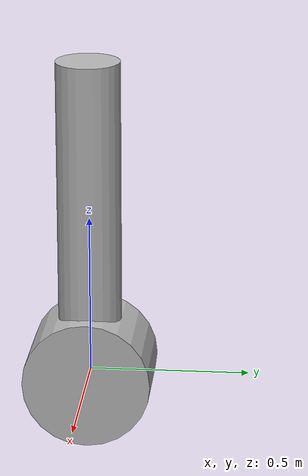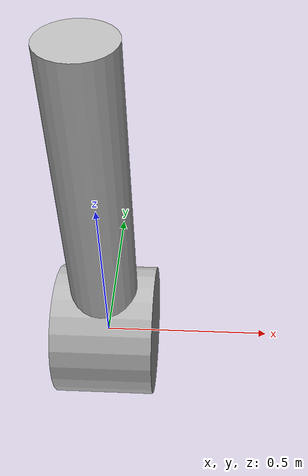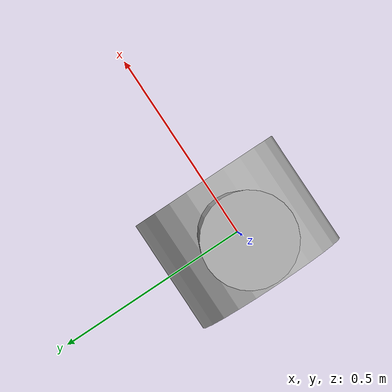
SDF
<?xml version='1.0' ?>

<!-- THIS FILE IS GENERATED FROM segway_cart_pole.rsdf -->

<sdf version='1.6'>
  <model name='CartPole'>
    <!-- This sdf file produces a model with the default parameters as
         documented in cart_pole_params.named_vector.
         They MUST be kept in sync. -->
    <link name='wheel_cart'>
      <pose>0 0 0 0 0 0</pose>
      <inertial>
        <mass>10.0</mass>
        <inertia>
          <ixx>1.0e-20</ixx><iyy>1.0e-20</iyy><izz>1.0e-20</izz>
          <ixy>0</ixy><ixz>0</ixz><iyz>0</iyz>
        </inertia>
      </inertial>

      <visual name='vis_wheel_joint'>
        <pose>0 0 0 0 1.570795 0</pose>
        <geometry>
          <cylinder>
            <radius>0.2</radius>
            <length>0.3</length>
          </cylinder>
        </geometry>
      </visual>

      <collision name='col_wheel_joint'>
        <pose>0 0 0 0 1.570795 0</pose>
        <geometry>
          <cylinder>
            <radius>0.2</radius>
            <length>0.3</length>
          </cylinder>
        </geometry>
      </collision>

    </link>

    <link name='pole'>
      <gravity>true</gravity>
      <self_collide>0</self_collide>
      <pose>0 0 0.5 0 0 0</pose>
      <inertial>
          <mass>50.0</mass>
          <inertia>
            <ixx>0</ixx>
            <iyy>16.666666666666664</iyy>
            <izz>16.666666666666664</izz>
            <ixy>0</ixy><ixz>0</ixz><iyz>0</iyz>
          </inertia>
      </inertial>

      <visual name='vis_cylinder'>
        <pose>0 0 0 0 0 0</pose>
        <geometry>
          <cylinder>
            <radius>0.1</radius>
            <length>1.0</length>
          </cylinder>
        </geometry>
      </visual>
      <collision name='col_cylinder'>
        <pose>0 0 0 0 0 0</pose>
        <geometry>
          <cylinder>
            <radius>0.1</radius>
            <length>1.0</length>
          </cylinder>
        </geometry>
      </collision>
    </link>

    <joint name='CartSlider' type='prismatic'>
      <parent>world</parent>
      <child>wheel_cart</child>
      <axis>
        <xyz>1.0 0.0 0.0</xyz>
      </axis>

    </joint>

    <joint name='PolePin' type='revolute'>
      <!-- Pose of the joint frame in the pole's frame (located at the point
           mass) -->
      <pose>0 0 -0.5 0 0 0</pose>
      <parent>wheel_cart</parent>
      <child>pole</child>
      <axis>
        <xyz>0.0 1.0 0.0</xyz>
        <limit>
          <!-- The pole pin joint is not actuated. -->
          <effort>0</effort>
        </limit>
      </axis>
    </joint>
  </model>
</sdf>
